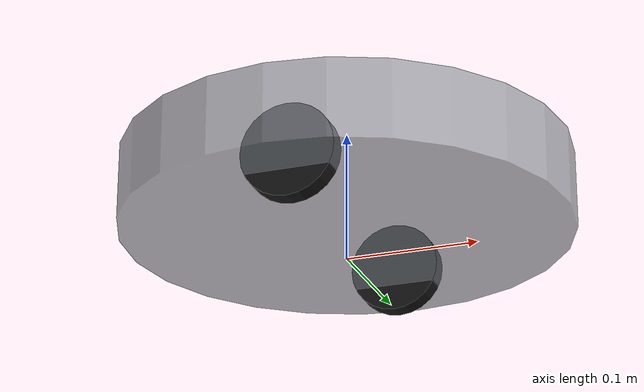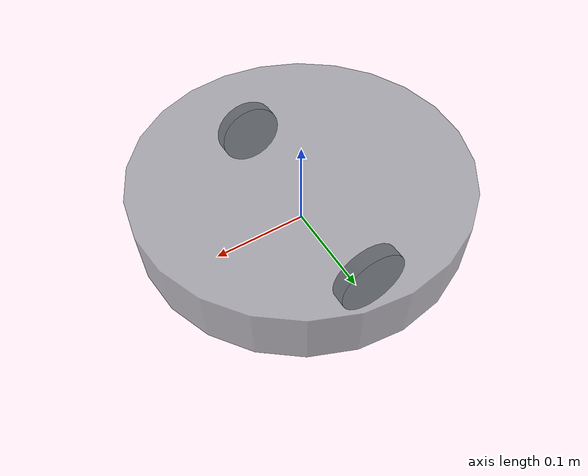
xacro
<?xml version="1.0"?>
<robot xmlns:xacro="http://www.ros.org/wiki/xacro" name="agv">
  <!-- Dimensions measured on 2026-10-18. SI units. Separation is approximate. -->
  <xacro:arg name="body_diameter" default="0.340"/>
  <xacro:arg name="wheel_separation" default="0.235"/>
  <xacro:arg name="wheel_diameter" default="0.070"/>
  <xacro:arg name="wheel_width" default="0.015"/>
  <xacro:arg name="body_height" default="0.060"/>
  <xacro:arg name="body_ground_clearance" default="0.020"/>
  <xacro:arg name="imu_top_offset" default="0.015"/>
  <!-- Scan origin relative to the IMU, measured on 2026-10-20: 65 mm above and 115 mm behind (-X), on the centreline. -->
  <xacro:arg name="lidar_above_imu" default="0.065"/>
  <xacro:arg name="lidar_x_offset" default="-0.115"/>
  <xacro:property name="lidar_up" value="$(arg lidar_above_imu)"/>
  <xacro:property name="lidar_x" value="$(arg lidar_x_offset)"/>
  <xacro:property name="imu_offset" value="$(arg imu_top_offset)"/>
  <xacro:property name="body_d" value="$(arg body_diameter)"/>
  <xacro:property name="wheel_d" value="$(arg wheel_diameter)"/>
  <xacro:property name="wheel_w" value="$(arg wheel_width)"/>
  <xacro:property name="separation" value="$(arg wheel_separation)"/>
  <xacro:property name="body_h" value="$(arg body_height)"/>
  <xacro:property name="clearance" value="$(arg body_ground_clearance)"/>

  <material name="body_grey"><color rgba="0.55 0.57 0.60 0.7"/></material>
  <material name="tyre_black"><color rgba="0.08 0.08 0.08 1"/></material>

  <!-- x forward, y left, z up. Assume axle midpoint lies below body centre. -->
  <link name="base_footprint"/>
  <link name="base_link">
    <visual>
      <origin xyz="0 0 ${clearance + body_h / 2 - wheel_d / 2}"/>
      <geometry><cylinder radius="${body_d / 2}" length="${body_h}"/></geometry>
      <material name="body_grey"/>
    </visual>
  </link>
  <joint name="base_footprint_joint" type="fixed">
    <parent link="base_footprint"/><child link="base_link"/>
    <origin xyz="0 0 ${wheel_d / 2}"/>
  </joint>

  <xacro:macro name="wheel" params="side sign">
    <link name="${side}_wheel_link">
      <visual>
        <origin rpy="${pi / 2} 0 0"/>
        <geometry><cylinder radius="${wheel_d / 2}" length="${wheel_w}"/></geometry>
        <material name="tyre_black"/>
      </visual>
    </link>
    <joint name="${side}_wheel_joint" type="continuous">
      <parent link="base_link"/><child link="${side}_wheel_link"/>
      <origin xyz="0 ${sign * separation / 2} 0"/>
      <axis xyz="0 1 0"/>
    </joint>
  </xacro:macro>
  <xacro:wheel side="left" sign="${1}"/>
  <xacro:wheel side="right" sign="${-1}"/>
  <!-- IMU centred horizontally, 15 mm below the top of the body.
       Axes match the robot-frame data already published by the firmware. -->
  <link name="imu_link"/>
  <joint name="imu_joint" type="fixed">
    <parent link="base_link"/><child link="imu_link"/>
    <origin xyz="0 0 ${clearance + body_h - imu_offset - wheel_d / 2}" rpy="0 0 0"/>
  </joint>
  <!-- Level scan plane; yaw alignment still needs checking with real scans. -->
  <link name="laser"/>
  <joint name="laser_joint" type="fixed">
    <parent link="base_link"/><child link="laser"/>
    <origin xyz="${lidar_x} 0 ${clearance + body_h - imu_offset + lidar_up - wheel_d / 2}" rpy="0 0 0"/>
  </joint>
  <!-- Caster, collisions and inertias await measurements.
       No simulation plugins or motor command interfaces in this model. -->
</robot>
